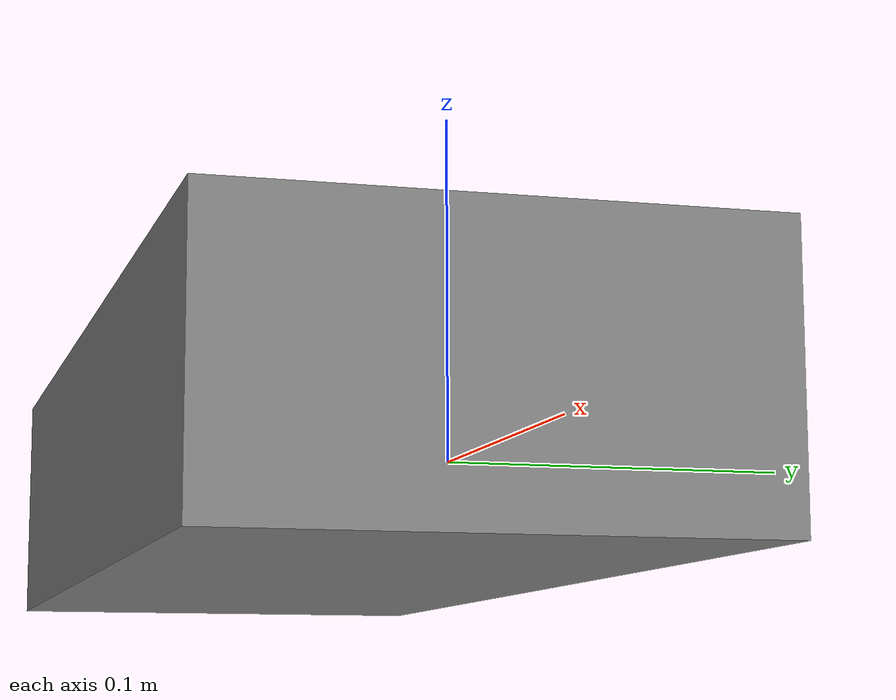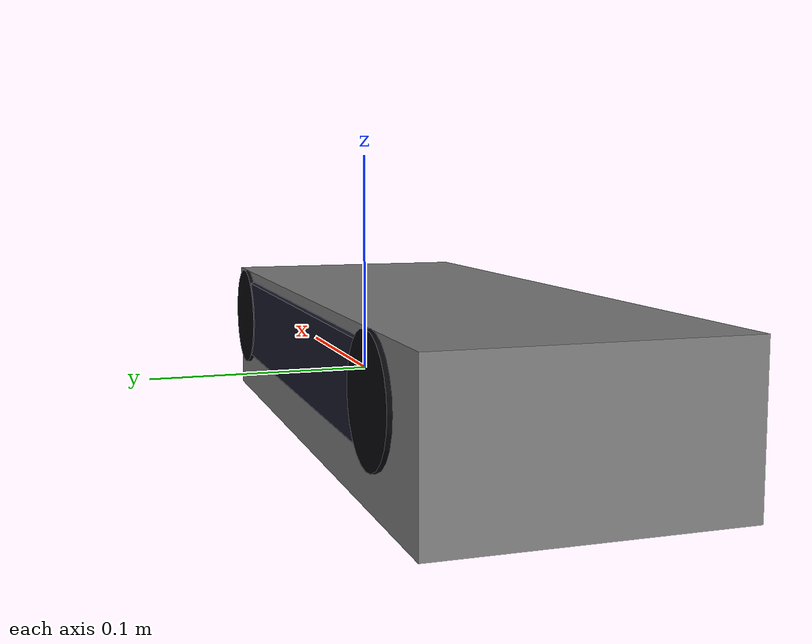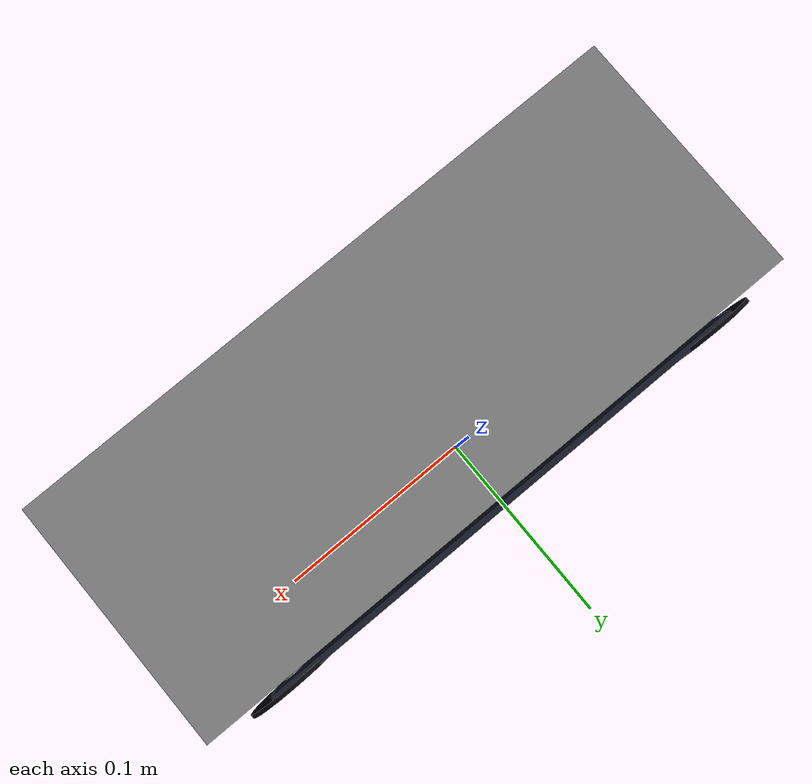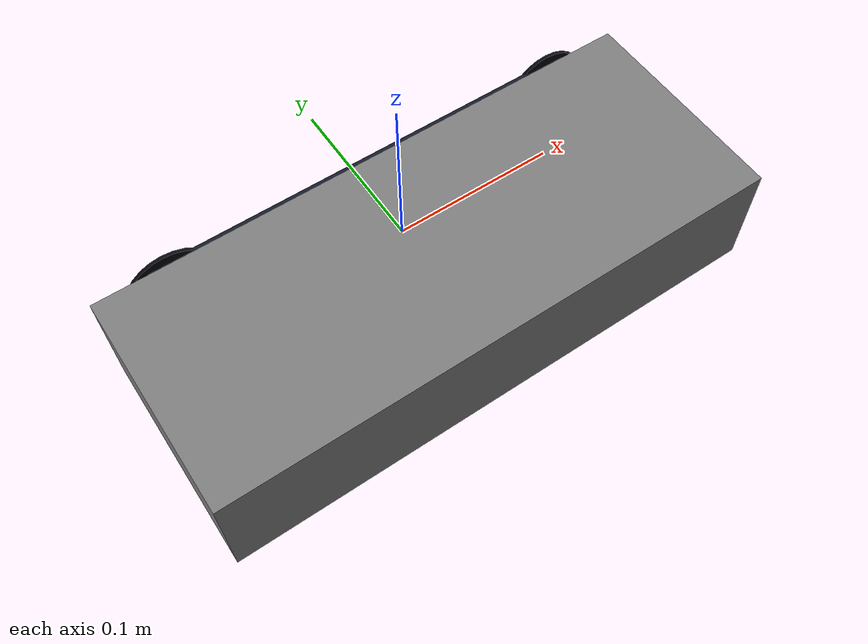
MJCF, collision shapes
<mujoco model="zivid">
  <compiler angle="radian" meshdir="meshes" autolimits="true"/>

  <asset>
    <mesh name="zivid_body_mesh" file="zivid_body.obj"/>
    <mesh name="zivid_fov_mesh" file="zivid_fov.obj"/>
    <material name="zivid_body" rgba="0.12 0.12 0.13 1" specular="0.3" shininess="0.3"/>
    <material name="zivid_glass" rgba="0.09 0.10 0.16 1" specular="0.7" shininess="0.8"/>
    <material name="zivid_lens" rgba="0.03 0.03 0.05 1" specular="0.9" shininess="0.9"/>
  </asset>

  <worldbody>
    <body name="mount">
      <body name="housing" pos="0 -0.102 0" quat="0.70710678 -0.70710678 0 0">
        <geom name="zivid_body" type="mesh" mesh="zivid_body_mesh" material="zivid_body"
              contype="0" conaffinity="0"/>
        <!-- Cheap box collision over the 336 x 70 x 133 mm housing (connector stub left out); the
             visual mesh carries the real shape. Mirrors the d435/mid360 mounts' box collision. -->
        <geom name="zivid_collision" type="box" pos="0 0 0.066" size="0.168 0.035 0.066" group="3"/>
      </body>
      <!-- Dark glass strip across the front (the mesh has no separate material for it): a thin plate
           over the optical band. Part of the OPTICS -- fixed at the optical origin. -->
      <geom name="zivid_glass" type="box" pos="0 0.0335 0.011" size="0.135 0.0015 0.020"
            material="zivid_glass" contype="0" conaffinity="0"/>
      <!-- The two optical windows, 250 mm apart: +x = imaging camera, -x = projector. Short cylinders
           along +y (the optical axis). Part of the OPTICS -- fixed at the optical origin. -->
      <geom name="zivid_lens_cam" type="cylinder" pos="0.125 0.0345 0.011" quat="0.7071 -0.7071 0 0"
            size="0.026 0.001" material="zivid_lens" contype="0" conaffinity="0"/>
      <geom name="zivid_lens_proj" type="cylinder" pos="-0.125 0.0345 0.011" quat="0.7071 -0.7071 0 0"
            size="0.026 0.001" material="zivid_lens" contype="0" conaffinity="0"/>
      <geom name="zivid_fov" type="mesh" mesh="zivid_fov_mesh" pos="0.125 0.030 0.011" group="2"
            contype="0" conaffinity="0" rgba="0.25 0.55 1.0 0.0"/>
      <camera name="zivid_color" pos="0.125 0.030 0.011" xyaxes="1 0 0 0 0 1"
              fovy="39" resolution="480 480"/>
      <site name="zivid" pos="0.125 0.030 0.011" size="0.005"/>
    </body>
  </worldbody>
</mujoco>
